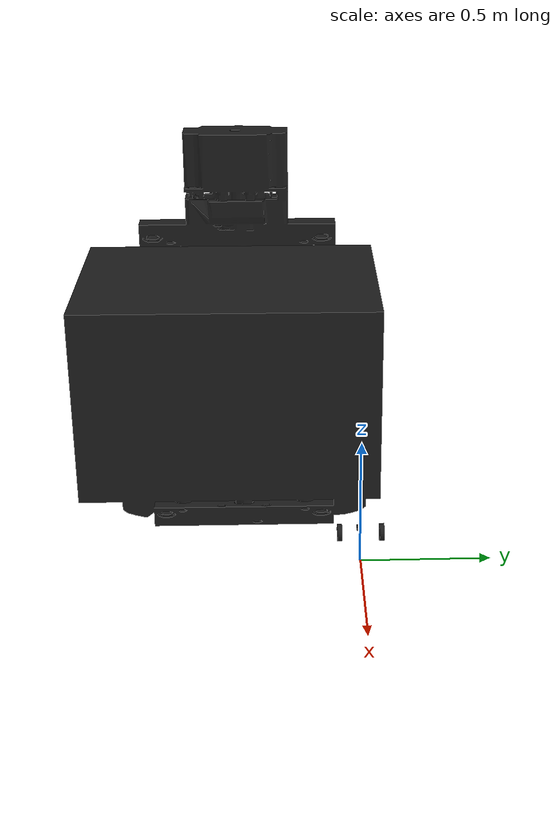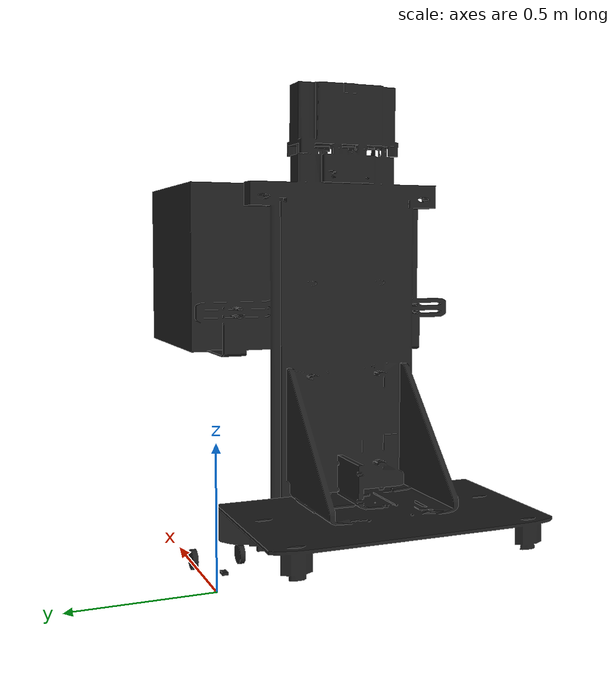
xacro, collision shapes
<?xml version="1.0" ?>
<robot name="turtlebot3_forklift" xmlns:xacro="http://ros.org/wiki/xacro">
  <xacro:include filename="$(find turtlebot3_description)/urdf/common_properties.xacro"/>
  <xacro:include filename="$(find turtlebot3_description)/urdf/turtlebot3_forklift.gazebo.xacro"/>

  <link name="base_footprint_forklift"/>

  <joint name="base_joint_forklift" type="fixed">
    <parent link="base_footprint_forklift"/>
    <child link="base_link_forklift"/>
    <origin xyz="0.0 0.0 0.10" rpy="0 0 0"/>
  </joint>

  <link name="base_link_forklift">
    <visual>
      <origin xyz="0 0 0.0" rpy="0 0 0"/>
      <geometry>
        <mesh filename="package://turtlebot3_description/meshes/bases/forklift_base_w_load.STL" scale="0.3 0.3 0.3"/>
      </geometry>
      <material name="light_black"/>
    </visual>

    <collision>
      <origin xyz="0 0 0.070" rpy="0 0 0"/>
      <geometry>
        <mesh filename="package://turtlebot3_description/meshes/bases/forklift_base_w_load.STL" scale="0.3 0.3 0.3"/>
      </geometry>
    </collision>

    <inertial>
      <origin xyz="0 0 0" rpy="0 0 0"/>
      <mass value="0.001"/>
      	<inertia ixx="0.01" ixy="0" ixz="0" iyy="0.01" iyz="0" izz="0.01" />
    </inertial>
  </link>

  <joint name="wheel_left_joint" type="continuous">
    <parent link="base_link_forklift"/>
    <child link="wheel_left_link"/>
    <origin xyz="0.0 0.08 0.023" rpy="-1.57 0 0"/>
    <axis xyz="0 0 1"/>
  </joint>

  <link name="wheel_left_link">
    <visual>
      <origin xyz="0 0 -0.9" rpy="1.57 0 0"/>
      <geometry>
        <mesh filename="package://turtlebot3_description/meshes/wheels/left_tire.stl" scale="0.003 0.003 0.003"/>
      </geometry>
      <material name="dark"/>
    </visual>

    <collision>
      <origin xyz="0 0 0" rpy="0 0 0"/>
      <geometry>
        <cylinder length="0.018" radius="0.033"/>
      </geometry>
    </collision>

    <inertial>
      <origin xyz="0 0 0" />
      <mass value="2.8498940e-02" />
      <inertia ixx="1.1175580e-05" ixy="-4.2369783e-11" ixz="-5.9381719e-09"
               iyy="1.1192413e-05" iyz="-1.4400107e-11"
               izz="2.0712558e-05" />
      </inertial>
  </link>

  <joint name="wheel_right_joint" type="continuous">
    <parent link="base_link_forklift"/>
    <child link="wheel_right_link"/>
    <origin xyz="0.0 -0.08 0.023" rpy="-1.57 0 0"/>
    <axis xyz="0 0 1"/>
  </joint>

  <link name="wheel_right_link">
    <visual>
      <origin xyz="0 0 0" rpy="1.57 0 0"/>
      <geometry>
        <mesh filename="package://turtlebot3_description/meshes/wheels/right_tire.stl" scale="0.003 0.003 0.003"/>
      </geometry>
      <material name="dark"/>
    </visual>

    <collision>
      <origin xyz="0 0 0" rpy="0 0 0"/>
      <geometry>
        <cylinder length="0.018" radius="0.033"/>
      </geometry>
    </collision>

    <inertial>
      <origin xyz="0 0 0" />
      <mass value="2.8498940e-02" />
      <inertia ixx="1.1175580e-05" ixy="-4.2369783e-11" ixz="-5.9381719e-09"
               iyy="1.1192413e-05" iyz="-1.4400107e-11"
               izz="2.0712558e-05" />
      </inertial>
  </link>

  <joint name="caster_back_joint" type="fixed">
    <parent link="base_link_forklift"/>
    <child link="caster_back_link"/>
    <origin xyz="-0.081 0 -0.004" rpy="-1.57 0 0"/>
  </joint>

  <link name="caster_back_link">
    <collision>
      <origin xyz="0 0.001 0" rpy="0 0 0"/>
      <geometry>
        <box size="0.030 0.009 0.020"/>
      </geometry>
    </collision>

    <inertial>
      <origin xyz="0 0 0" />
      <mass value="0.005" />
      <inertia ixx="0.001" ixy="0.0" ixz="0.0"
               iyy="0.001" iyz="0.0"
               izz="0.001" />
    </inertial>
  </link>

  <joint name="imu_joint" type="fixed">
    <parent link="base_link_forklift"/>
    <child link="imu_link"/>
    <origin xyz="-0.032 0 0.068" rpy="0 0 0"/>
  </joint>

  <link name="imu_link"/>

</robot>
